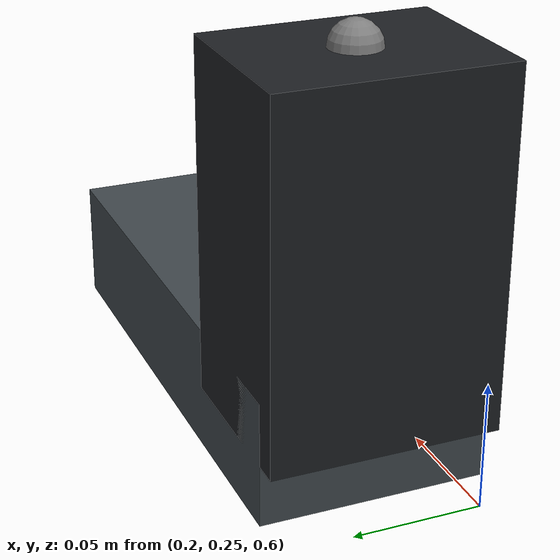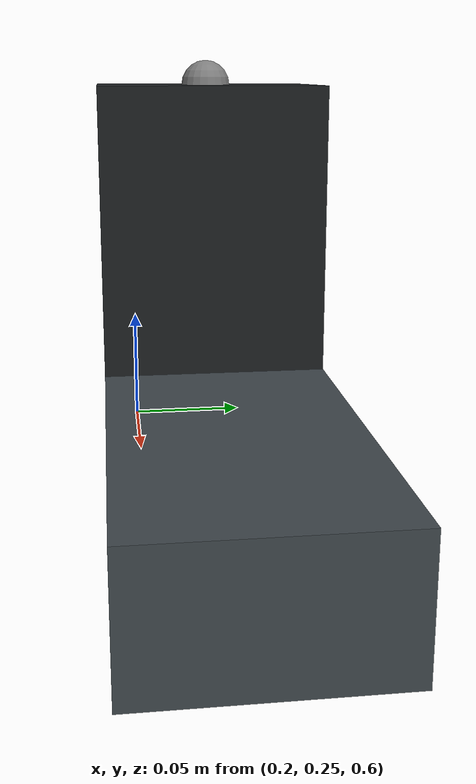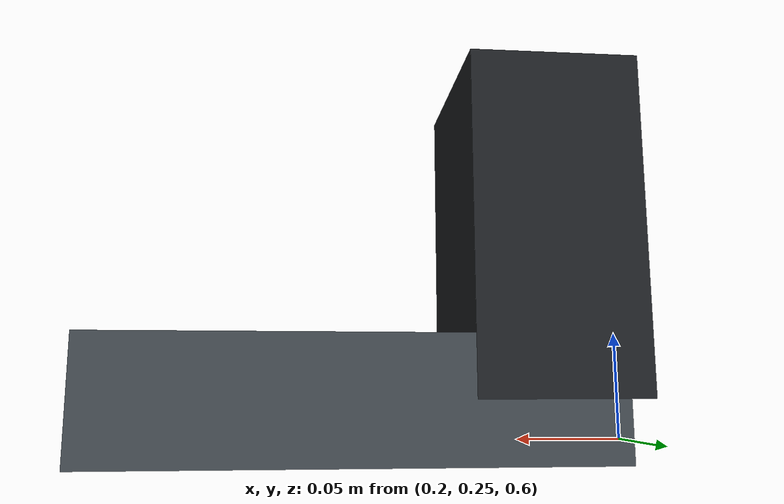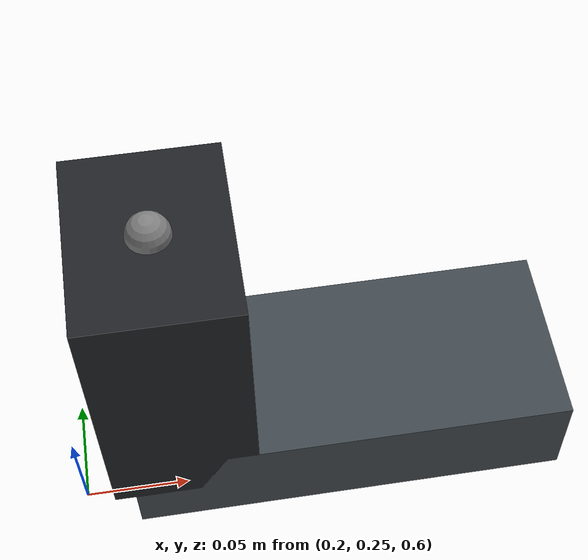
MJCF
<?xml version='1.0' encoding='utf-8'?>
<mujoco model="throttle">
  <compiler angle="radian" />
  <option timestep="0.002" gravity="0.0 0.0 -9.81" />
  <default>
    <geom friction="0.8 0.01 0.0001" />
  </default>
  <worldbody>
    <light name="throttle_light" pos="-0.5 -0.5 2" />
    <body name="throttle_base" pos="0.25 0.28 0.62">
      <geom name="throttle_rail" type="box" pos="0.08 0 0" size="0.10500000000000001 0.045 0.025" rgba="0.25 0.28 0.30 1" />
      <body name="throttle_handle_body">
        <joint name="throttle_joint" type="slide" axis="1 0 0" range="0 0.16" damping="4.0" frictionloss="2.0" />
        <geom name="throttle_handle" type="box" pos="0 0 0.07" size="0.035 0.045 0.07" mass="0.25" friction="0.7 0.01 0.0001" rgba="0.12 0.13 0.14 1" />
        <site name="throttle_force_site" pos="0 0 0.14" size="0.01" />
      </body>
    </body>
  </worldbody>
  <sensor>
    <jointpos name="throttle_position" joint="throttle_joint" />
    <jointvel name="throttle_velocity" joint="throttle_joint" />
    <force name="throttle_force" site="throttle_force_site" />
  </sensor>
</mujoco>
